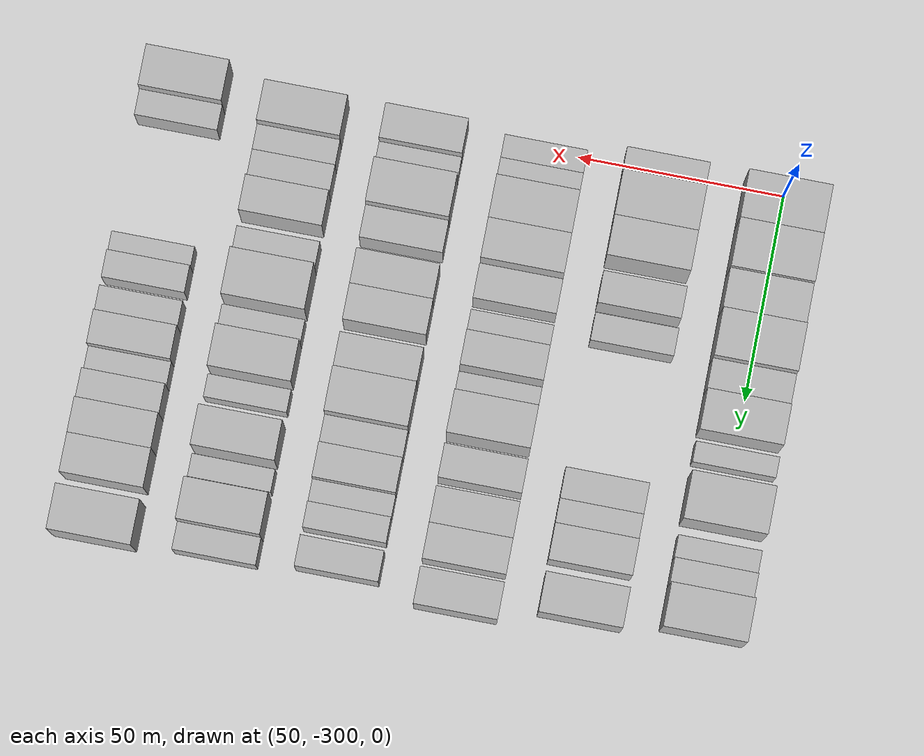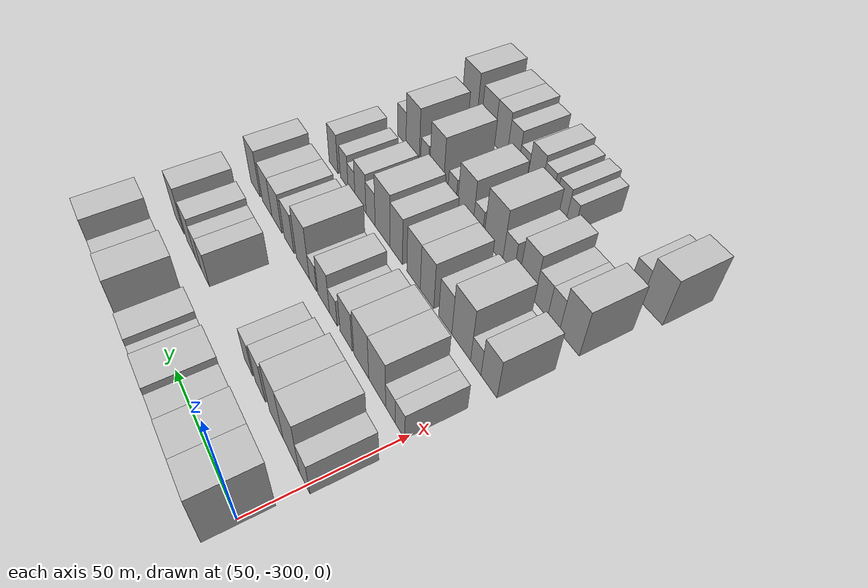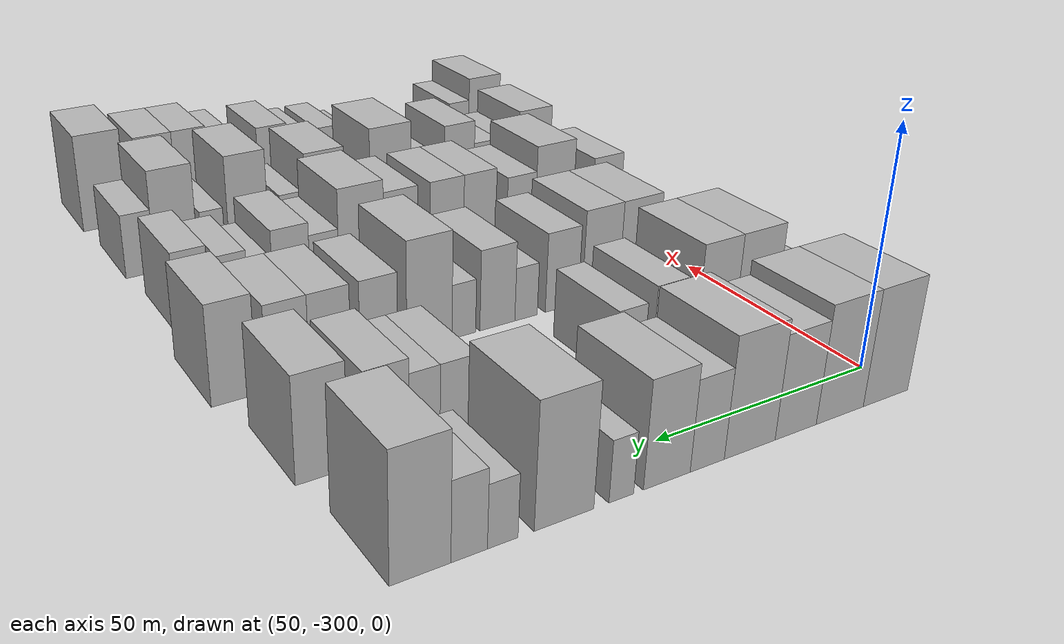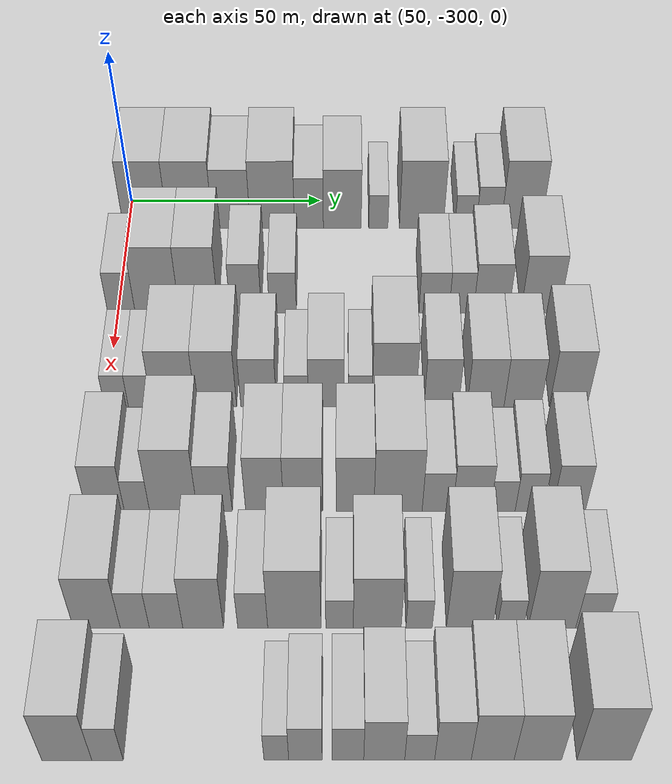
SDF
<sdf version="1.6">
 <world name="default">
  <model name="building_24">
   <static>1</static>
   <pose>50.0000 -295.4927 0 0.000000 0.000000 0.000000</pose>
   <link name="link">
    <pose>0 0 12.00 0 0 0</pose>
    <collision name="collision"><geometry><box><size>20.0000 11.5824 24.0000</size></box></geometry></collision>
    <visual name="visual">
     <cast_shadows>0</cast_shadows>
     <geometry><box><size>20.0000 11.5824 24.0000</size></box></geometry>
     <material>
      <script>
       <uri>model://HANNAS_wall/materials/scripts</uri>
       <uri>model://HANNAS_wall/materials/textures</uri>
       <name>vrc/HANNAS_wall</name>
      </script>
     </material>
    </visual>
   </link>
  </model>
  <model name="building_25">
   <static>1</static>
   <pose>50.0000 -283.8319 0 0.000000 0.000000 0.000000</pose>
   <link name="link">
    <pose>0 0 12.00 0 0 0</pose>
    <collision name="collision"><geometry><box><size>20.0000 11.7392 24.0000</size></box></geometry></collision>
    <visual name="visual">
     <cast_shadows>0</cast_shadows>
     <geometry><box><size>20.0000 11.7392 24.0000</size></box></geometry>
     <material>
      <script>
       <uri>model://HANNAS_wall/materials/scripts</uri>
       <uri>model://HANNAS_wall/materials/textures</uri>
       <name>vrc/HANNAS_wall</name>
      </script>
     </material>
    </visual>
   </link>
  </model>
  <model name="building_26">
   <static>1</static>
   <pose>50.0000 -273.0505 0 0.000000 0.000000 0.000000</pose>
   <link name="link">
    <pose>0 0 10.50 0 0 0</pose>
    <collision name="collision"><geometry><box><size>20.0000 9.8234 21.0000</size></box></geometry></collision>
    <visual name="visual">
     <cast_shadows>0</cast_shadows>
     <geometry><box><size>20.0000 9.8234 21.0000</size></box></geometry>
     <material>
      <script>
       <uri>model://HANNAS_wall/materials/scripts</uri>
       <uri>model://HANNAS_wall/materials/textures</uri>
       <name>vrc/HANNAS_wall</name>
      </script>
     </material>
    </visual>
   </link>
  </model>
  <model name="building_27">
   <static>1</static>
   <pose>50.0000 -262.3443 0 0.000000 0.000000 0.000000</pose>
   <link name="link">
    <pose>0 0 12.00 0 0 0</pose>
    <collision name="collision"><geometry><box><size>20.0000 11.5891 24.0000</size></box></geometry></collision>
    <visual name="visual">
     <cast_shadows>0</cast_shadows>
     <geometry><box><size>20.0000 11.5891 24.0000</size></box></geometry>
     <material>
      <script>
       <uri>model://HANNAS_wall/materials/scripts</uri>
       <uri>model://HANNAS_wall/materials/textures</uri>
       <name>vrc/HANNAS_wall</name>
      </script>
     </material>
    </visual>
   </link>
  </model>
  <model name="building_28">
   <static>1</static>
   <pose>50.0000 -252.7994 0 0.000000 0.000000 0.000000</pose>
   <link name="link">
    <pose>0 0 9.00 0 0 0</pose>
    <collision name="collision"><geometry><box><size>20.0000 7.5006 18.0000</size></box></geometry></collision>
    <visual name="visual">
     <cast_shadows>0</cast_shadows>
     <geometry><box><size>20.0000 7.5006 18.0000</size></box></geometry>
     <material>
      <script>
       <uri>model://HANNAS_wall/materials/scripts</uri>
       <uri>model://HANNAS_wall/materials/textures</uri>
       <name>vrc/HANNAS_wall</name>
      </script>
     </material>
    </visual>
   </link>
  </model>
  <model name="building_29">
   <static>1</static>
   <pose>50.0000 -244.1160 0 0.000000 0.000000 0.000000</pose>
   <link name="link">
    <pose>0 0 10.50 0 0 0</pose>
    <collision name="collision"><geometry><box><size>20.0000 9.8663 21.0000</size></box></geometry></collision>
    <visual name="visual">
     <cast_shadows>0</cast_shadows>
     <geometry><box><size>20.0000 9.8663 21.0000</size></box></geometry>
     <material>
      <script>
       <uri>model://HANNAS_wall/materials/scripts</uri>
       <uri>model://HANNAS_wall/materials/textures</uri>
       <name>vrc/HANNAS_wall</name>
      </script>
     </material>
    </visual>
   </link>
  </model>
  <model name="building_30">
   <static>1</static>
   <pose>50.0000 -234.6776 0 0.000000 0.000000 0.000000</pose>
   <link name="link">
    <pose>0 0 6.00 0 0 0</pose>
    <collision name="collision"><geometry><box><size>20.0000 5.0105 12.0000</size></box></geometry></collision>
    <visual name="visual">
     <cast_shadows>0</cast_shadows>
     <geometry><box><size>20.0000 5.0105 12.0000</size></box></geometry>
     <material>
      <script>
       <uri>model://HANNAS_wall/materials/scripts</uri>
       <uri>model://HANNAS_wall/materials/textures</uri>
       <name>vrc/HANNAS_wall</name>
      </script>
     </material>
    </visual>
   </link>
  </model>
  <model name="building_31">
   <static>1</static>
   <pose>50.0000 -223.4328 0 0.000000 0.000000 0.000000</pose>
   <link name="link">
    <pose>0 0 12.00 0 0 0</pose>
    <collision name="collision"><geometry><box><size>20.0000 11.4790 24.0000</size></box></geometry></collision>
    <visual name="visual">
     <cast_shadows>0</cast_shadows>
     <geometry><box><size>20.0000 11.4790 24.0000</size></box></geometry>
     <material>
      <script>
       <uri>model://HANNAS_wall/materials/scripts</uri>
       <uri>model://HANNAS_wall/materials/textures</uri>
       <name>vrc/HANNAS_wall</name>
      </script>
     </material>
    </visual>
   </link>
  </model>
  <model name="building_32">
   <static>1</static>
   <pose>50.0000 -211.8994 0 0.000000 0.000000 0.000000</pose>
   <link name="link">
    <pose>0 0 6.00 0 0 0</pose>
    <collision name="collision"><geometry><box><size>20.0000 5.5879 12.0000</size></box></geometry></collision>
    <visual name="visual">
     <cast_shadows>0</cast_shadows>
     <geometry><box><size>20.0000 5.5879 12.0000</size></box></geometry>
     <material>
      <script>
       <uri>model://HANNAS_wall/materials/scripts</uri>
       <uri>model://HANNAS_wall/materials/textures</uri>
       <name>vrc/HANNAS_wall</name>
      </script>
     </material>
    </visual>
   </link>
  </model>
  <model name="building_33">
   <static>1</static>
   <pose>50.0000 -205.8719 0 0.000000 0.000000 0.000000</pose>
   <link name="link">
    <pose>0 0 7.50 0 0 0</pose>
    <collision name="collision"><geometry><box><size>20.0000 6.4670 15.0000</size></box></geometry></collision>
    <visual name="visual">
     <cast_shadows>0</cast_shadows>
     <geometry><box><size>20.0000 6.4670 15.0000</size></box></geometry>
     <material>
      <script>
       <uri>model://HANNAS_wall/materials/scripts</uri>
       <uri>model://HANNAS_wall/materials/textures</uri>
       <name>vrc/HANNAS_wall</name>
      </script>
     </material>
    </visual>
   </link>
  </model>
  <model name="building_34">
   <static>1</static>
   <pose>50.0000 -197.3775 0 0.000000 0.000000 0.000000</pose>
   <link name="link">
    <pose>0 0 12.00 0 0 0</pose>
    <collision name="collision"><geometry><box><size>20.0000 10.5219 24.0000</size></box></geometry></collision>
    <visual name="visual">
     <cast_shadows>0</cast_shadows>
     <geometry><box><size>20.0000 10.5219 24.0000</size></box></geometry>
     <material>
      <script>
       <uri>model://HANNAS_wall/materials/scripts</uri>
       <uri>model://HANNAS_wall/materials/textures</uri>
       <name>vrc/HANNAS_wall</name>
      </script>
     </material>
    </visual>
   </link>
  </model>
  <model name="building_139">
   <static>1</static>
   <pose>79.0000 -299.1031 0 0.000000 0.000000 0.000000</pose>
   <link name="link">
    <pose>0 0 7.50 0 0 0</pose>
    <collision name="collision"><geometry><box><size>20.0000 6.8283 15.0000</size></box></geometry></collision>
    <visual name="visual">
     <cast_shadows>0</cast_shadows>
     <geometry><box><size>20.0000 6.8283 15.0000</size></box></geometry>
     <material>
      <script>
       <uri>model://HANNAS_wall/materials/scripts</uri>
       <uri>model://HANNAS_wall/materials/textures</uri>
       <name>vrc/HANNAS_wall</name>
      </script>
     </material>
    </visual>
   </link>
  </model>
  <model name="building_140">
   <static>1</static>
   <pose>79.0000 -290.1957 0 0.000000 0.000000 0.000000</pose>
   <link name="link">
    <pose>0 0 12.00 0 0 0</pose>
    <collision name="collision"><geometry><box><size>20.0000 10.9865 24.0000</size></box></geometry></collision>
    <visual name="visual">
     <cast_shadows>0</cast_shadows>
     <geometry><box><size>20.0000 10.9865 24.0000</size></box></geometry>
     <material>
      <script>
       <uri>model://HANNAS_wall/materials/scripts</uri>
       <uri>model://HANNAS_wall/materials/textures</uri>
       <name>vrc/HANNAS_wall</name>
      </script>
     </material>
    </visual>
   </link>
  </model>
  <model name="building_141">
   <static>1</static>
   <pose>79.0000 -279.8552 0 0.000000 0.000000 0.000000</pose>
   <link name="link">
    <pose>0 0 12.00 0 0 0</pose>
    <collision name="collision"><geometry><box><size>20.0000 9.6945 24.0000</size></box></geometry></collision>
    <visual name="visual">
     <cast_shadows>0</cast_shadows>
     <geometry><box><size>20.0000 9.6945 24.0000</size></box></geometry>
     <material>
      <script>
       <uri>model://HANNAS_wall/materials/scripts</uri>
       <uri>model://HANNAS_wall/materials/textures</uri>
       <name>vrc/HANNAS_wall</name>
      </script>
     </material>
    </visual>
   </link>
  </model>
  <model name="building_142">
   <static>1</static>
   <pose>79.0000 -268.1449 0 0.000000 0.000000 0.000000</pose>
   <link name="link">
    <pose>0 0 9.00 0 0 0</pose>
    <collision name="collision"><geometry><box><size>20.0000 7.7260 18.0000</size></box></geometry></collision>
    <visual name="visual">
     <cast_shadows>0</cast_shadows>
     <geometry><box><size>20.0000 7.7260 18.0000</size></box></geometry>
     <material>
      <script>
       <uri>model://HANNAS_wall/materials/scripts</uri>
       <uri>model://HANNAS_wall/materials/textures</uri>
       <name>vrc/HANNAS_wall</name>
      </script>
     </material>
    </visual>
   </link>
  </model>
  <model name="building_143">
   <static>1</static>
   <pose>79.0000 -258.9259 0 0.000000 0.000000 0.000000</pose>
   <link name="link">
    <pose>0 0 7.50 0 0 0</pose>
    <collision name="collision"><geometry><box><size>20.0000 6.7119 15.0000</size></box></geometry></collision>
    <visual name="visual">
     <cast_shadows>0</cast_shadows>
     <geometry><box><size>20.0000 6.7119 15.0000</size></box></geometry>
     <material>
      <script>
       <uri>model://HANNAS_wall/materials/scripts</uri>
       <uri>model://HANNAS_wall/materials/textures</uri>
       <name>vrc/HANNAS_wall</name>
      </script>
     </material>
    </visual>
   </link>
  </model>
  <model name="building_144">
   <static>1</static>
   <pose>79.0000 -221.3448 0 0.000000 0.000000 0.000000</pose>
   <link name="link">
    <pose>0 0 7.50 0 0 0</pose>
    <collision name="collision"><geometry><box><size>20.0000 7.4835 15.0000</size></box></geometry></collision>
    <visual name="visual">
     <cast_shadows>0</cast_shadows>
     <geometry><box><size>20.0000 7.4835 15.0000</size></box></geometry>
     <material>
      <script>
       <uri>model://HANNAS_wall/materials/scripts</uri>
       <uri>model://HANNAS_wall/materials/textures</uri>
       <name>vrc/HANNAS_wall</name>
      </script>
     </material>
    </visual>
   </link>
  </model>
  <model name="building_145">
   <static>1</static>
   <pose>79.0000 -214.5574 0 0.000000 0.000000 0.000000</pose>
   <link name="link">
    <pose>0 0 7.50 0 0 0</pose>
    <collision name="collision"><geometry><box><size>20.0000 6.0912 15.0000</size></box></geometry></collision>
    <visual name="visual">
     <cast_shadows>0</cast_shadows>
     <geometry><box><size>20.0000 6.0912 15.0000</size></box></geometry>
     <material>
      <script>
       <uri>model://HANNAS_wall/materials/scripts</uri>
       <uri>model://HANNAS_wall/materials/textures</uri>
       <name>vrc/HANNAS_wall</name>
      </script>
     </material>
    </visual>
   </link>
  </model>
  <model name="building_146">
   <static>1</static>
   <pose>79.0000 -207.1182 0 0.000000 0.000000 0.000000</pose>
   <link name="link">
    <pose>0 0 9.00 0 0 0</pose>
    <collision name="collision"><geometry><box><size>20.0000 8.7872 18.0000</size></box></geometry></collision>
    <visual name="visual">
     <cast_shadows>0</cast_shadows>
     <geometry><box><size>20.0000 8.7872 18.0000</size></box></geometry>
     <material>
      <script>
       <uri>model://HANNAS_wall/materials/scripts</uri>
       <uri>model://HANNAS_wall/materials/textures</uri>
       <name>vrc/HANNAS_wall</name>
      </script>
     </material>
    </visual>
   </link>
  </model>
  <model name="building_147">
   <static>1</static>
   <pose>79.0000 -194.9103 0 0.000000 0.000000 0.000000</pose>
   <link name="link">
    <pose>0 0 10.50 0 0 0</pose>
    <collision name="collision"><geometry><box><size>20.0000 9.6287 21.0000</size></box></geometry></collision>
    <visual name="visual">
     <cast_shadows>0</cast_shadows>
     <geometry><box><size>20.0000 9.6287 21.0000</size></box></geometry>
     <material>
      <script>
       <uri>model://HANNAS_wall/materials/scripts</uri>
       <uri>model://HANNAS_wall/materials/textures</uri>
       <name>vrc/HANNAS_wall</name>
      </script>
     </material>
    </visual>
   </link>
  </model>
  <model name="building_255">
   <static>1</static>
   <pose>108.0000 -297.5417 0 0.000000 0.000000 0.000000</pose>
   <link name="link">
    <pose>0 0 6.00 0 0 0</pose>
    <collision name="collision"><geometry><box><size>20.0000 5.5905 12.0000</size></box></geometry></collision>
    <visual name="visual">
     <cast_shadows>0</cast_shadows>
     <geometry><box><size>20.0000 5.5905 12.0000</size></box></geometry>
     <material>
      <script>
       <uri>model://HANNAS_wall/materials/scripts</uri>
       <uri>model://HANNAS_wall/materials/textures</uri>
       <name>vrc/HANNAS_wall</name>
      </script>
     </material>
    </visual>
   </link>
  </model>
  <model name="building_256">
   <static>1</static>
   <pose>108.0000 -291.9974 0 0.000000 0.000000 0.000000</pose>
   <link name="link">
    <pose>0 0 6.00 0 0 0</pose>
    <collision name="collision"><geometry><box><size>20.0000 5.4981 12.0000</size></box></geometry></collision>
    <visual name="visual">
     <cast_shadows>0</cast_shadows>
     <geometry><box><size>20.0000 5.4981 12.0000</size></box></geometry>
     <material>
      <script>
       <uri>model://HANNAS_wall/materials/scripts</uri>
       <uri>model://HANNAS_wall/materials/textures</uri>
       <name>vrc/HANNAS_wall</name>
      </script>
     </material>
    </visual>
   </link>
  </model>
  <model name="building_257">
   <static>1</static>
   <pose>108.0000 -284.0546 0 0.000000 0.000000 0.000000</pose>
   <link name="link">
    <pose>0 0 10.50 0 0 0</pose>
    <collision name="collision"><geometry><box><size>20.0000 10.3875 21.0000</size></box></geometry></collision>
    <visual name="visual">
     <cast_shadows>0</cast_shadows>
     <geometry><box><size>20.0000 10.3875 21.0000</size></box></geometry>
     <material>
      <script>
       <uri>model://HANNAS_wall/materials/scripts</uri>
       <uri>model://HANNAS_wall/materials/textures</uri>
       <name>vrc/HANNAS_wall</name>
      </script>
     </material>
    </visual>
   </link>
  </model>
  <model name="building_258">
   <static>1</static>
   <pose>108.0000 -274.0103 0 0.000000 0.000000 0.000000</pose>
   <link name="link">
    <pose>0 0 10.50 0 0 0</pose>
    <collision name="collision"><geometry><box><size>20.0000 9.7011 21.0000</size></box></geometry></collision>
    <visual name="visual">
     <cast_shadows>0</cast_shadows>
     <geometry><box><size>20.0000 9.7011 21.0000</size></box></geometry>
     <material>
      <script>
       <uri>model://HANNAS_wall/materials/scripts</uri>
       <uri>model://HANNAS_wall/materials/textures</uri>
       <name>vrc/HANNAS_wall</name>
      </script>
     </material>
    </visual>
   </link>
  </model>
  <model name="building_259">
   <static>1</static>
   <pose>108.0000 -263.9703 0 0.000000 0.000000 0.000000</pose>
   <link name="link">
    <pose>0 0 9.00 0 0 0</pose>
    <collision name="collision"><geometry><box><size>20.0000 8.3788 18.0000</size></box></geometry></collision>
    <visual name="visual">
     <cast_shadows>0</cast_shadows>
     <geometry><box><size>20.0000 8.3788 18.0000</size></box></geometry>
     <material>
      <script>
       <uri>model://HANNAS_wall/materials/scripts</uri>
       <uri>model://HANNAS_wall/materials/textures</uri>
       <name>vrc/HANNAS_wall</name>
      </script>
     </material>
    </visual>
   </link>
  </model>
  <model name="building_260">
   <static>1</static>
   <pose>108.0000 -255.0025 0 0.000000 0.000000 0.000000</pose>
   <link name="link">
    <pose>0 0 6.00 0 0 0</pose>
    <collision name="collision"><geometry><box><size>20.0000 5.5568 12.0000</size></box></geometry></collision>
    <visual name="visual">
     <cast_shadows>0</cast_shadows>
     <geometry><box><size>20.0000 5.5568 12.0000</size></box></geometry>
     <material>
      <script>
       <uri>model://HANNAS_wall/materials/scripts</uri>
       <uri>model://HANNAS_wall/materials/textures</uri>
       <name>vrc/HANNAS_wall</name>
      </script>
     </material>
    </visual>
   </link>
  </model>
  <model name="building_261">
   <static>1</static>
   <pose>108.0000 -247.9977 0 0.000000 0.000000 0.000000</pose>
   <link name="link">
    <pose>0 0 9.00 0 0 0</pose>
    <collision name="collision"><geometry><box><size>20.0000 8.4528 18.0000</size></box></geometry></collision>
    <visual name="visual">
     <cast_shadows>0</cast_shadows>
     <geometry><box><size>20.0000 8.4528 18.0000</size></box></geometry>
     <material>
      <script>
       <uri>model://HANNAS_wall/materials/scripts</uri>
       <uri>model://HANNAS_wall/materials/textures</uri>
       <name>vrc/HANNAS_wall</name>
      </script>
     </material>
    </visual>
   </link>
  </model>
  <model name="building_262">
   <static>1</static>
   <pose>108.0000 -239.9920 0 0.000000 0.000000 0.000000</pose>
   <link name="link">
    <pose>0 0 6.00 0 0 0</pose>
    <collision name="collision"><geometry><box><size>20.0000 5.5586 12.0000</size></box></geometry></collision>
    <visual name="visual">
     <cast_shadows>0</cast_shadows>
     <geometry><box><size>20.0000 5.5586 12.0000</size></box></geometry>
     <material>
      <script>
       <uri>model://HANNAS_wall/materials/scripts</uri>
       <uri>model://HANNAS_wall/materials/textures</uri>
       <name>vrc/HANNAS_wall</name>
      </script>
     </material>
    </visual>
   </link>
  </model>
  <model name="building_263">
   <static>1</static>
   <pose>108.0000 -232.0579 0 0.000000 0.000000 0.000000</pose>
   <link name="link">
    <pose>0 0 12.00 0 0 0</pose>
    <collision name="collision"><geometry><box><size>20.0000 10.3098 24.0000</size></box></geometry></collision>
    <visual name="visual">
     <cast_shadows>0</cast_shadows>
     <geometry><box><size>20.0000 10.3098 24.0000</size></box></geometry>
     <material>
      <script>
       <uri>model://HANNAS_wall/materials/scripts</uri>
       <uri>model://HANNAS_wall/materials/textures</uri>
       <name>vrc/HANNAS_wall</name>
      </script>
     </material>
    </visual>
   </link>
  </model>
  <model name="building_264">
   <static>1</static>
   <pose>108.0000 -220.8111 0 0.000000 0.000000 0.000000</pose>
   <link name="link">
    <pose>0 0 9.00 0 0 0</pose>
    <collision name="collision"><geometry><box><size>20.0000 8.1837 18.0000</size></box></geometry></collision>
    <visual name="visual">
     <cast_shadows>0</cast_shadows>
     <geometry><box><size>20.0000 8.1837 18.0000</size></box></geometry>
     <material>
      <script>
       <uri>model://HANNAS_wall/materials/scripts</uri>
       <uri>model://HANNAS_wall/materials/textures</uri>
       <name>vrc/HANNAS_wall</name>
      </script>
     </material>
    </visual>
   </link>
  </model>
  <model name="building_265">
   <static>1</static>
   <pose>108.0000 -210.3652 0 0.000000 0.000000 0.000000</pose>
   <link name="link">
    <pose>0 0 9.00 0 0 0</pose>
    <collision name="collision"><geometry><box><size>20.0000 8.7081 18.0000</size></box></geometry></collision>
    <visual name="visual">
     <cast_shadows>0</cast_shadows>
     <geometry><box><size>20.0000 8.7081 18.0000</size></box></geometry>
     <material>
      <script>
       <uri>model://HANNAS_wall/materials/scripts</uri>
       <uri>model://HANNAS_wall/materials/textures</uri>
       <name>vrc/HANNAS_wall</name>
      </script>
     </material>
    </visual>
   </link>
  </model>
  <model name="building_266">
   <static>1</static>
   <pose>108.0000 -201.6700 0 0.000000 0.000000 0.000000</pose>
   <link name="link">
    <pose>0 0 9.00 0 0 0</pose>
    <collision name="collision"><geometry><box><size>20.0000 8.6824 18.0000</size></box></geometry></collision>
    <visual name="visual">
     <cast_shadows>0</cast_shadows>
     <geometry><box><size>20.0000 8.6824 18.0000</size></box></geometry>
     <material>
      <script>
       <uri>model://HANNAS_wall/materials/scripts</uri>
       <uri>model://HANNAS_wall/materials/textures</uri>
       <name>vrc/HANNAS_wall</name>
      </script>
     </material>
    </visual>
   </link>
  </model>
  <model name="building_267">
   <static>1</static>
   <pose>108.0000 -190.8737 0 0.000000 0.000000 0.000000</pose>
   <link name="link">
    <pose>0 0 10.50 0 0 0</pose>
    <collision name="collision"><geometry><box><size>20.0000 8.9103 21.0000</size></box></geometry></collision>
    <visual name="visual">
     <cast_shadows>0</cast_shadows>
     <geometry><box><size>20.0000 8.9103 21.0000</size></box></geometry>
     <material>
      <script>
       <uri>model://HANNAS_wall/materials/scripts</uri>
       <uri>model://HANNAS_wall/materials/textures</uri>
       <name>vrc/HANNAS_wall</name>
      </script>
     </material>
    </visual>
   </link>
  </model>
  <model name="building_367">
   <static>1</static>
   <pose>137.0000 -297.2257 0 0.000000 0.000000 0.000000</pose>
   <link name="link">
    <pose>0 0 9.00 0 0 0</pose>
    <collision name="collision"><geometry><box><size>20.0000 8.4610 18.0000</size></box></geometry></collision>
    <visual name="visual">
     <cast_shadows>0</cast_shadows>
     <geometry><box><size>20.0000 8.4610 18.0000</size></box></geometry>
     <material>
      <script>
       <uri>model://HANNAS_wall/materials/scripts</uri>
       <uri>model://HANNAS_wall/materials/textures</uri>
       <name>vrc/HANNAS_wall</name>
      </script>
     </material>
    </visual>
   </link>
  </model>
  <model name="building_368">
   <static>1</static>
   <pose>137.0000 -290.1711 0 0.000000 0.000000 0.000000</pose>
   <link name="link">
    <pose>0 0 6.00 0 0 0</pose>
    <collision name="collision"><geometry><box><size>20.0000 5.6482 12.0000</size></box></geometry></collision>
    <visual name="visual">
     <cast_shadows>0</cast_shadows>
     <geometry><box><size>20.0000 5.6482 12.0000</size></box></geometry>
     <material>
      <script>
       <uri>model://HANNAS_wall/materials/scripts</uri>
       <uri>model://HANNAS_wall/materials/textures</uri>
       <name>vrc/HANNAS_wall</name>
      </script>
     </material>
    </visual>
   </link>
  </model>
  <model name="building_369">
   <static>1</static>
   <pose>137.0000 -282.0194 0 0.000000 0.000000 0.000000</pose>
   <link name="link">
    <pose>0 0 12.00 0 0 0</pose>
    <collision name="collision"><geometry><box><size>20.0000 10.6551 24.0000</size></box></geometry></collision>
    <visual name="visual">
     <cast_shadows>0</cast_shadows>
     <geometry><box><size>20.0000 10.6551 24.0000</size></box></geometry>
     <material>
      <script>
       <uri>model://HANNAS_wall/materials/scripts</uri>
       <uri>model://HANNAS_wall/materials/textures</uri>
       <name>vrc/HANNAS_wall</name>
      </script>
     </material>
    </visual>
   </link>
  </model>
  <model name="building_370">
   <static>1</static>
   <pose>137.0000 -272.7763 0 0.000000 0.000000 0.000000</pose>
   <link name="link">
    <pose>0 0 9.00 0 0 0</pose>
    <collision name="collision"><geometry><box><size>20.0000 7.8312 18.0000</size></box></geometry></collision>
    <visual name="visual">
     <cast_shadows>0</cast_shadows>
     <geometry><box><size>20.0000 7.8312 18.0000</size></box></geometry>
     <material>
      <script>
       <uri>model://HANNAS_wall/materials/scripts</uri>
       <uri>model://HANNAS_wall/materials/textures</uri>
       <name>vrc/HANNAS_wall</name>
      </script>
     </material>
    </visual>
   </link>
  </model>
  <model name="building_371">
   <static>1</static>
   <pose>137.0000 -261.6184 0 0.000000 0.000000 0.000000</pose>
   <link name="link">
    <pose>0 0 10.50 0 0 0</pose>
    <collision name="collision"><geometry><box><size>20.0000 8.4846 21.0000</size></box></geometry></collision>
    <visual name="visual">
     <cast_shadows>0</cast_shadows>
     <geometry><box><size>20.0000 8.4846 21.0000</size></box></geometry>
     <material>
      <script>
       <uri>model://HANNAS_wall/materials/scripts</uri>
       <uri>model://HANNAS_wall/materials/textures</uri>
       <name>vrc/HANNAS_wall</name>
      </script>
     </material>
    </visual>
   </link>
  </model>
  <model name="building_372">
   <static>1</static>
   <pose>137.0000 -253.0241 0 0.000000 0.000000 0.000000</pose>
   <link name="link">
    <pose>0 0 10.50 0 0 0</pose>
    <collision name="collision"><geometry><box><size>20.0000 8.7040 21.0000</size></box></geometry></collision>
    <visual name="visual">
     <cast_shadows>0</cast_shadows>
     <geometry><box><size>20.0000 8.7040 21.0000</size></box></geometry>
     <material>
      <script>
       <uri>model://HANNAS_wall/materials/scripts</uri>
       <uri>model://HANNAS_wall/materials/textures</uri>
       <name>vrc/HANNAS_wall</name>
      </script>
     </material>
    </visual>
   </link>
  </model>
  <model name="building_373">
   <static>1</static>
   <pose>137.0000 -241.4494 0 0.000000 0.000000 0.000000</pose>
   <link name="link">
    <pose>0 0 10.50 0 0 0</pose>
    <collision name="collision"><geometry><box><size>20.0000 8.4453 21.0000</size></box></geometry></collision>
    <visual name="visual">
     <cast_shadows>0</cast_shadows>
     <geometry><box><size>20.0000 8.4453 21.0000</size></box></geometry>
     <material>
      <script>
       <uri>model://HANNAS_wall/materials/scripts</uri>
       <uri>model://HANNAS_wall/materials/textures</uri>
       <name>vrc/HANNAS_wall</name>
      </script>
     </material>
    </visual>
   </link>
  </model>
  <model name="building_374">
   <static>1</static>
   <pose>137.0000 -231.8343 0 0.000000 0.000000 0.000000</pose>
   <link name="link">
    <pose>0 0 12.00 0 0 0</pose>
    <collision name="collision"><geometry><box><size>20.0000 10.7849 24.0000</size></box></geometry></collision>
    <visual name="visual">
     <cast_shadows>0</cast_shadows>
     <geometry><box><size>20.0000 10.7849 24.0000</size></box></geometry>
     <material>
      <script>
       <uri>model://HANNAS_wall/materials/scripts</uri>
       <uri>model://HANNAS_wall/materials/textures</uri>
       <name>vrc/HANNAS_wall</name>
      </script>
     </material>
    </visual>
   </link>
  </model>
  <model name="building_375">
   <static>1</static>
   <pose>137.0000 -223.0422 0 0.000000 0.000000 0.000000</pose>
   <link name="link">
    <pose>0 0 7.50 0 0 0</pose>
    <collision name="collision"><geometry><box><size>20.0000 6.7993 15.0000</size></box></geometry></collision>
    <visual name="visual">
     <cast_shadows>0</cast_shadows>
     <geometry><box><size>20.0000 6.7993 15.0000</size></box></geometry>
     <material>
      <script>
       <uri>model://HANNAS_wall/materials/scripts</uri>
       <uri>model://HANNAS_wall/materials/textures</uri>
       <name>vrc/HANNAS_wall</name>
      </script>
     </material>
    </visual>
   </link>
  </model>
  <model name="building_376">
   <static>1</static>
   <pose>137.0000 -215.4248 0 0.000000 0.000000 0.000000</pose>
   <link name="link">
    <pose>0 0 9.00 0 0 0</pose>
    <collision name="collision"><geometry><box><size>20.0000 8.4355 18.0000</size></box></geometry></collision>
    <visual name="visual">
     <cast_shadows>0</cast_shadows>
     <geometry><box><size>20.0000 8.4355 18.0000</size></box></geometry>
     <material>
      <script>
       <uri>model://HANNAS_wall/materials/scripts</uri>
       <uri>model://HANNAS_wall/materials/textures</uri>
       <name>vrc/HANNAS_wall</name>
      </script>
     </material>
    </visual>
   </link>
  </model>
  <model name="building_377">
   <static>1</static>
   <pose>137.0000 -208.4265 0 0.000000 0.000000 0.000000</pose>
   <link name="link">
    <pose>0 0 6.00 0 0 0</pose>
    <collision name="collision"><geometry><box><size>20.0000 5.5611 12.0000</size></box></geometry></collision>
    <visual name="visual">
     <cast_shadows>0</cast_shadows>
     <geometry><box><size>20.0000 5.5611 12.0000</size></box></geometry>
     <material>
      <script>
       <uri>model://HANNAS_wall/materials/scripts</uri>
       <uri>model://HANNAS_wall/materials/textures</uri>
       <name>vrc/HANNAS_wall</name>
      </script>
     </material>
    </visual>
   </link>
  </model>
  <model name="building_378">
   <static>1</static>
   <pose>137.0000 -202.5121 0 0.000000 0.000000 0.000000</pose>
   <link name="link">
    <pose>0 0 7.50 0 0 0</pose>
    <collision name="collision"><geometry><box><size>20.0000 6.2679 15.0000</size></box></geometry></collision>
    <visual name="visual">
     <cast_shadows>0</cast_shadows>
     <geometry><box><size>20.0000 6.2679 15.0000</size></box></geometry>
     <material>
      <script>
       <uri>model://HANNAS_wall/materials/scripts</uri>
       <uri>model://HANNAS_wall/materials/textures</uri>
       <name>vrc/HANNAS_wall</name>
      </script>
     </material>
    </visual>
   </link>
  </model>
  <model name="building_379">
   <static>1</static>
   <pose>137.0000 -193.6588 0 0.000000 0.000000 0.000000</pose>
   <link name="link">
    <pose>0 0 9.00 0 0 0</pose>
    <collision name="collision"><geometry><box><size>20.0000 7.4387 18.0000</size></box></geometry></collision>
    <visual name="visual">
     <cast_shadows>0</cast_shadows>
     <geometry><box><size>20.0000 7.4387 18.0000</size></box></geometry>
     <material>
      <script>
       <uri>model://HANNAS_wall/materials/scripts</uri>
       <uri>model://HANNAS_wall/materials/textures</uri>
       <name>vrc/HANNAS_wall</name>
      </script>
     </material>
    </visual>
   </link>
  </model>
  <model name="building_489">
   <static>1</static>
   <pose>166.0000 -296.0775 0 0.000000 0.000000 0.000000</pose>
   <link name="link">
    <pose>0 0 10.50 0 0 0</pose>
    <collision name="collision"><geometry><box><size>20.0000 9.8701 21.0000</size></box></geometry></collision>
    <visual name="visual">
     <cast_shadows>0</cast_shadows>
     <geometry><box><size>20.0000 9.8701 21.0000</size></box></geometry>
     <material>
      <script>
       <uri>model://HANNAS_wall/materials/scripts</uri>
       <uri>model://HANNAS_wall/materials/textures</uri>
       <name>vrc/HANNAS_wall</name>
      </script>
     </material>
    </visual>
   </link>
  </model>
  <model name="building_490">
   <static>1</static>
   <pose>166.0000 -288.0790 0 0.000000 0.000000 0.000000</pose>
   <link name="link">
    <pose>0 0 7.50 0 0 0</pose>
    <collision name="collision"><geometry><box><size>20.0000 6.1269 15.0000</size></box></geometry></collision>
    <visual name="visual">
     <cast_shadows>0</cast_shadows>
     <geometry><box><size>20.0000 6.1269 15.0000</size></box></geometry>
     <material>
      <script>
       <uri>model://HANNAS_wall/materials/scripts</uri>
       <uri>model://HANNAS_wall/materials/textures</uri>
       <name>vrc/HANNAS_wall</name>
      </script>
     </material>
    </visual>
   </link>
  </model>
  <model name="building_491">
   <static>1</static>
   <pose>166.0000 -281.4854 0 0.000000 0.000000 0.000000</pose>
   <link name="link">
    <pose>0 0 7.50 0 0 0</pose>
    <collision name="collision"><geometry><box><size>20.0000 7.0603 15.0000</size></box></geometry></collision>
    <visual name="visual">
     <cast_shadows>0</cast_shadows>
     <geometry><box><size>20.0000 7.0603 15.0000</size></box></geometry>
     <material>
      <script>
       <uri>model://HANNAS_wall/materials/scripts</uri>
       <uri>model://HANNAS_wall/materials/textures</uri>
       <name>vrc/HANNAS_wall</name>
      </script>
     </material>
    </visual>
   </link>
  </model>
  <model name="building_492">
   <static>1</static>
   <pose>166.0000 -273.6605 0 0.000000 0.000000 0.000000</pose>
   <link name="link">
    <pose>0 0 10.50 0 0 0</pose>
    <collision name="collision"><geometry><box><size>20.0000 8.5896 21.0000</size></box></geometry></collision>
    <visual name="visual">
     <cast_shadows>0</cast_shadows>
     <geometry><box><size>20.0000 8.5896 21.0000</size></box></geometry>
     <material>
      <script>
       <uri>model://HANNAS_wall/materials/scripts</uri>
       <uri>model://HANNAS_wall/materials/textures</uri>
       <name>vrc/HANNAS_wall</name>
      </script>
     </material>
    </visual>
   </link>
  </model>
  <model name="building_493">
   <static>1</static>
   <pose>166.0000 -263.2115 0 0.000000 0.000000 0.000000</pose>
   <link name="link">
    <pose>0 0 7.50 0 0 0</pose>
    <collision name="collision"><geometry><box><size>20.0000 6.3084 15.0000</size></box></geometry></collision>
    <visual name="visual">
     <cast_shadows>0</cast_shadows>
     <geometry><box><size>20.0000 6.3084 15.0000</size></box></geometry>
     <material>
      <script>
       <uri>model://HANNAS_wall/materials/scripts</uri>
       <uri>model://HANNAS_wall/materials/textures</uri>
       <name>vrc/HANNAS_wall</name>
      </script>
     </material>
    </visual>
   </link>
  </model>
  <model name="building_494">
   <static>1</static>
   <pose>166.0000 -254.4371 0 0.000000 0.000000 0.000000</pose>
   <link name="link">
    <pose>0 0 12.00 0 0 0</pose>
    <collision name="collision"><geometry><box><size>20.0000 11.2405 24.0000</size></box></geometry></collision>
    <visual name="visual">
     <cast_shadows>0</cast_shadows>
     <geometry><box><size>20.0000 11.2405 24.0000</size></box></geometry>
     <material>
      <script>
       <uri>model://HANNAS_wall/materials/scripts</uri>
       <uri>model://HANNAS_wall/materials/textures</uri>
       <name>vrc/HANNAS_wall</name>
      </script>
     </material>
    </visual>
   </link>
  </model>
  <model name="building_495">
   <static>1</static>
   <pose>166.0000 -244.9300 0 0.000000 0.000000 0.000000</pose>
   <link name="link">
    <pose>0 0 6.00 0 0 0</pose>
    <collision name="collision"><geometry><box><size>20.0000 5.7737 12.0000</size></box></geometry></collision>
    <visual name="visual">
     <cast_shadows>0</cast_shadows>
     <geometry><box><size>20.0000 5.7737 12.0000</size></box></geometry>
     <material>
      <script>
       <uri>model://HANNAS_wall/materials/scripts</uri>
       <uri>model://HANNAS_wall/materials/textures</uri>
       <name>vrc/HANNAS_wall</name>
      </script>
     </material>
    </visual>
   </link>
  </model>
  <model name="building_496">
   <static>1</static>
   <pose>166.0000 -236.9888 0 0.000000 0.000000 0.000000</pose>
   <link name="link">
    <pose>0 0 10.50 0 0 0</pose>
    <collision name="collision"><geometry><box><size>20.0000 10.1088 21.0000</size></box></geometry></collision>
    <visual name="visual">
     <cast_shadows>0</cast_shadows>
     <geometry><box><size>20.0000 10.1088 21.0000</size></box></geometry>
     <material>
      <script>
       <uri>model://HANNAS_wall/materials/scripts</uri>
       <uri>model://HANNAS_wall/materials/textures</uri>
       <name>vrc/HANNAS_wall</name>
      </script>
     </material>
    </visual>
   </link>
  </model>
  <model name="building_497">
   <static>1</static>
   <pose>166.0000 -228.1656 0 0.000000 0.000000 0.000000</pose>
   <link name="link">
    <pose>0 0 6.00 0 0 0</pose>
    <collision name="collision"><geometry><box><size>20.0000 5.5378 12.0000</size></box></geometry></collision>
    <visual name="visual">
     <cast_shadows>0</cast_shadows>
     <geometry><box><size>20.0000 5.5378 12.0000</size></box></geometry>
     <material>
      <script>
       <uri>model://HANNAS_wall/materials/scripts</uri>
       <uri>model://HANNAS_wall/materials/textures</uri>
       <name>vrc/HANNAS_wall</name>
      </script>
     </material>
    </visual>
   </link>
  </model>
  <model name="building_498">
   <static>1</static>
   <pose>166.0000 -217.5573 0 0.000000 0.000000 0.000000</pose>
   <link name="link">
    <pose>0 0 12.00 0 0 0</pose>
    <collision name="collision"><geometry><box><size>20.0000 9.6786 24.0000</size></box></geometry></collision>
    <visual name="visual">
     <cast_shadows>0</cast_shadows>
     <geometry><box><size>20.0000 9.6786 24.0000</size></box></geometry>
     <material>
      <script>
       <uri>model://HANNAS_wall/materials/scripts</uri>
       <uri>model://HANNAS_wall/materials/textures</uri>
       <name>vrc/HANNAS_wall</name>
      </script>
     </material>
    </visual>
   </link>
  </model>
  <model name="building_499">
   <static>1</static>
   <pose>166.0000 -208.9484 0 0.000000 0.000000 0.000000</pose>
   <link name="link">
    <pose>0 0 6.00 0 0 0</pose>
    <collision name="collision"><geometry><box><size>20.0000 5.5392 12.0000</size></box></geometry></collision>
    <visual name="visual">
     <cast_shadows>0</cast_shadows>
     <geometry><box><size>20.0000 5.5392 12.0000</size></box></geometry>
     <material>
      <script>
       <uri>model://HANNAS_wall/materials/scripts</uri>
       <uri>model://HANNAS_wall/materials/textures</uri>
       <name>vrc/HANNAS_wall</name>
      </script>
     </material>
    </visual>
   </link>
  </model>
  <model name="building_500">
   <static>1</static>
   <pose>166.0000 -200.1561 0 0.000000 0.000000 0.000000</pose>
   <link name="link">
    <pose>0 0 12.00 0 0 0</pose>
    <collision name="collision"><geometry><box><size>20.0000 10.0456 24.0000</size></box></geometry></collision>
    <visual name="visual">
     <cast_shadows>0</cast_shadows>
     <geometry><box><size>20.0000 10.0456 24.0000</size></box></geometry>
     <material>
      <script>
       <uri>model://HANNAS_wall/materials/scripts</uri>
       <uri>model://HANNAS_wall/materials/textures</uri>
       <name>vrc/HANNAS_wall</name>
      </script>
     </material>
    </visual>
   </link>
  </model>
  <model name="building_501">
   <static>1</static>
   <pose>166.0000 -191.7968 0 0.000000 0.000000 0.000000</pose>
   <link name="link">
    <pose>0 0 7.50 0 0 0</pose>
    <collision name="collision"><geometry><box><size>20.0000 6.6729 15.0000</size></box></geometry></collision>
    <visual name="visual">
     <cast_shadows>0</cast_shadows>
     <geometry><box><size>20.0000 6.6729 15.0000</size></box></geometry>
     <material>
      <script>
       <uri>model://HANNAS_wall/materials/scripts</uri>
       <uri>model://HANNAS_wall/materials/textures</uri>
       <name>vrc/HANNAS_wall</name>
      </script>
     </material>
    </visual>
   </link>
  </model>
  <model name="building_609">
   <static>1</static>
   <pose>195.0000 -299.0066 0 0.000000 0.000000 0.000000</pose>
   <link name="link">
    <pose>0 0 10.50 0 0 0</pose>
    <collision name="collision"><geometry><box><size>20.0000 9.9149 21.0000</size></box></geometry></collision>
    <visual name="visual">
     <cast_shadows>0</cast_shadows>
     <geometry><box><size>20.0000 9.9149 21.0000</size></box></geometry>
     <material>
      <script>
       <uri>model://HANNAS_wall/materials/scripts</uri>
       <uri>model://HANNAS_wall/materials/textures</uri>
       <name>vrc/HANNAS_wall</name>
      </script>
     </material>
    </visual>
   </link>
  </model>
  <model name="building_610">
   <static>1</static>
   <pose>195.0000 -290.9321 0 0.000000 0.000000 0.000000</pose>
   <link name="link">
    <pose>0 0 7.50 0 0 0</pose>
    <collision name="collision"><geometry><box><size>20.0000 6.2341 15.0000</size></box></geometry></collision>
    <visual name="visual">
     <cast_shadows>0</cast_shadows>
     <geometry><box><size>20.0000 6.2341 15.0000</size></box></geometry>
     <material>
      <script>
       <uri>model://HANNAS_wall/materials/scripts</uri>
       <uri>model://HANNAS_wall/materials/textures</uri>
       <name>vrc/HANNAS_wall</name>
      </script>
     </material>
    </visual>
   </link>
  </model>
  <model name="building_611">
   <static>1</static>
   <pose>195.0000 -257.4655 0 0.000000 0.000000 0.000000</pose>
   <link name="link">
    <pose>0 0 6.00 0 0 0</pose>
    <collision name="collision"><geometry><box><size>20.0000 4.8997 12.0000</size></box></geometry></collision>
    <visual name="visual">
     <cast_shadows>0</cast_shadows>
     <geometry><box><size>20.0000 4.8997 12.0000</size></box></geometry>
     <material>
      <script>
       <uri>model://HANNAS_wall/materials/scripts</uri>
       <uri>model://HANNAS_wall/materials/textures</uri>
       <name>vrc/HANNAS_wall</name>
      </script>
     </material>
    </visual>
   </link>
  </model>
  <model name="building_612">
   <static>1</static>
   <pose>195.0000 -251.7007 0 0.000000 0.000000 0.000000</pose>
   <link name="link">
    <pose>0 0 7.50 0 0 0</pose>
    <collision name="collision"><geometry><box><size>20.0000 6.6298 15.0000</size></box></geometry></collision>
    <visual name="visual">
     <cast_shadows>0</cast_shadows>
     <geometry><box><size>20.0000 6.6298 15.0000</size></box></geometry>
     <material>
      <script>
       <uri>model://HANNAS_wall/materials/scripts</uri>
       <uri>model://HANNAS_wall/materials/textures</uri>
       <name>vrc/HANNAS_wall</name>
      </script>
     </material>
    </visual>
   </link>
  </model>
  <model name="building_613">
   <static>1</static>
   <pose>195.0000 -243.2711 0 0.000000 0.000000 0.000000</pose>
   <link name="link">
    <pose>0 0 7.50 0 0 0</pose>
    <collision name="collision"><geometry><box><size>20.0000 6.2295 15.0000</size></box></geometry></collision>
    <visual name="visual">
     <cast_shadows>0</cast_shadows>
     <geometry><box><size>20.0000 6.2295 15.0000</size></box></geometry>
     <material>
      <script>
       <uri>model://HANNAS_wall/materials/scripts</uri>
       <uri>model://HANNAS_wall/materials/textures</uri>
       <name>vrc/HANNAS_wall</name>
      </script>
     </material>
    </visual>
   </link>
  </model>
  <model name="building_614">
   <static>1</static>
   <pose>195.0000 -236.0915 0 0.000000 0.000000 0.000000</pose>
   <link name="link">
    <pose>0 0 9.00 0 0 0</pose>
    <collision name="collision"><geometry><box><size>20.0000 8.1297 18.0000</size></box></geometry></collision>
    <visual name="visual">
     <cast_shadows>0</cast_shadows>
     <geometry><box><size>20.0000 8.1297 18.0000</size></box></geometry>
     <material>
      <script>
       <uri>model://HANNAS_wall/materials/scripts</uri>
       <uri>model://HANNAS_wall/materials/textures</uri>
       <name>vrc/HANNAS_wall</name>
      </script>
     </material>
    </visual>
   </link>
  </model>
  <model name="building_615">
   <static>1</static>
   <pose>195.0000 -229.0657 0 0.000000 0.000000 0.000000</pose>
   <link name="link">
    <pose>0 0 6.00 0 0 0</pose>
    <collision name="collision"><geometry><box><size>20.0000 5.9217 12.0000</size></box></geometry></collision>
    <visual name="visual">
     <cast_shadows>0</cast_shadows>
     <geometry><box><size>20.0000 5.9217 12.0000</size></box></geometry>
     <material>
      <script>
       <uri>model://HANNAS_wall/materials/scripts</uri>
       <uri>model://HANNAS_wall/materials/textures</uri>
       <name>vrc/HANNAS_wall</name>
      </script>
     </material>
    </visual>
   </link>
  </model>
  <model name="building_616">
   <static>1</static>
   <pose>195.0000 -222.4835 0 0.000000 0.000000 0.000000</pose>
   <link name="link">
    <pose>0 0 9.00 0 0 0</pose>
    <collision name="collision"><geometry><box><size>20.0000 7.2429 18.0000</size></box></geometry></collision>
    <visual name="visual">
     <cast_shadows>0</cast_shadows>
     <geometry><box><size>20.0000 7.2429 18.0000</size></box></geometry>
     <material>
      <script>
       <uri>model://HANNAS_wall/materials/scripts</uri>
       <uri>model://HANNAS_wall/materials/textures</uri>
       <name>vrc/HANNAS_wall</name>
      </script>
     </material>
    </visual>
   </link>
  </model>
  <model name="building_617">
   <static>1</static>
   <pose>195.0000 -214.6066 0 0.000000 0.000000 0.000000</pose>
   <link name="link">
    <pose>0 0 10.50 0 0 0</pose>
    <collision name="collision"><geometry><box><size>20.0000 8.5109 21.0000</size></box></geometry></collision>
    <visual name="visual">
     <cast_shadows>0</cast_shadows>
     <geometry><box><size>20.0000 8.5109 21.0000</size></box></geometry>
     <material>
      <script>
       <uri>model://HANNAS_wall/materials/scripts</uri>
       <uri>model://HANNAS_wall/materials/textures</uri>
       <name>vrc/HANNAS_wall</name>
      </script>
     </material>
    </visual>
   </link>
  </model>
  <model name="building_618">
   <static>1</static>
   <pose>195.0000 -205.6354 0 0.000000 0.000000 0.000000</pose>
   <link name="link">
    <pose>0 0 10.50 0 0 0</pose>
    <collision name="collision"><geometry><box><size>20.0000 9.4314 21.0000</size></box></geometry></collision>
    <visual name="visual">
     <cast_shadows>0</cast_shadows>
     <geometry><box><size>20.0000 9.4314 21.0000</size></box></geometry>
     <material>
      <script>
       <uri>model://HANNAS_wall/materials/scripts</uri>
       <uri>model://HANNAS_wall/materials/textures</uri>
       <name>vrc/HANNAS_wall</name>
      </script>
     </material>
    </visual>
   </link>
  </model>
  <model name="building_619">
   <static>1</static>
   <pose>195.0000 -192.4887 0 0.000000 0.000000 0.000000</pose>
   <link name="link">
    <pose>0 0 12.00 0 0 0</pose>
    <collision name="collision"><geometry><box><size>20.0000 10.8620 24.0000</size></box></geometry></collision>
    <visual name="visual">
     <cast_shadows>0</cast_shadows>
     <geometry><box><size>20.0000 10.8620 24.0000</size></box></geometry>
     <material>
      <script>
       <uri>model://HANNAS_wall/materials/scripts</uri>
       <uri>model://HANNAS_wall/materials/textures</uri>
       <name>vrc/HANNAS_wall</name>
      </script>
     </material>
    </visual>
   </link>
  </model>
 </world>
</sdf>
